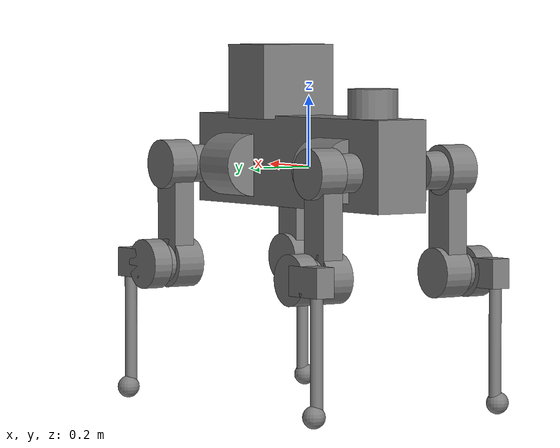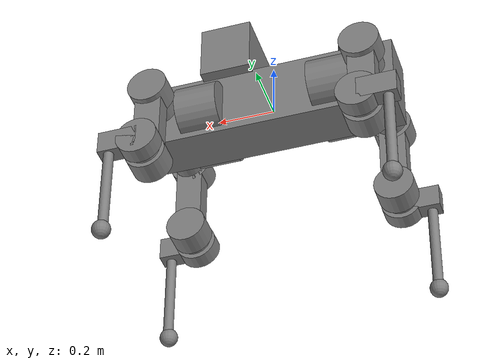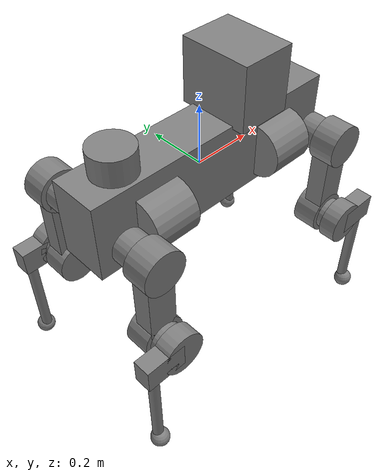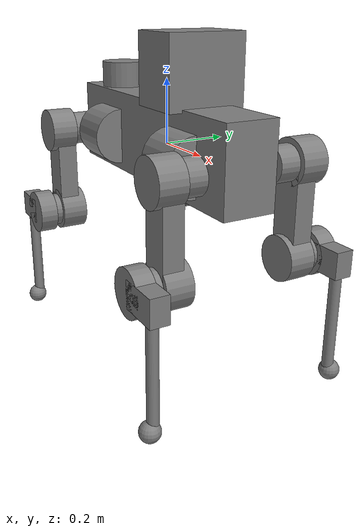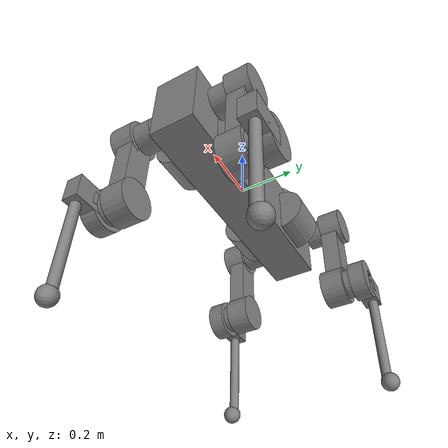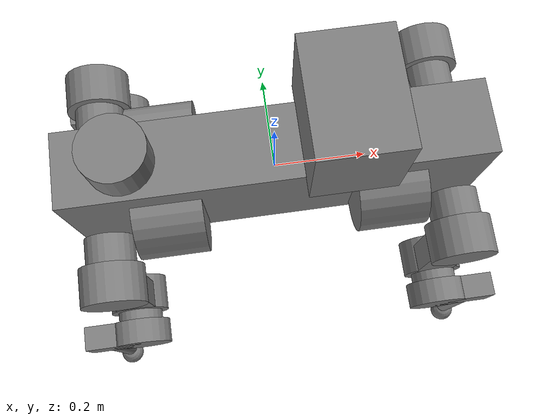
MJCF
<?xml version='1.0' encoding='utf-8'?>
<mujoco model="anymal">
  <compiler angle="radian" boundmass="1e-06" boundinertia="1e-08" meshdir=".." />
  <worldbody>
    <body name="base">
      <joint type="free" />
      <geom size="0.447 0.08075 0.128" pos="0 0 0.016" type="box" />
      <geom size="0.089 0.0741" pos="0.2353 0.08075 0" quat="0.707107 0 0.707107 0" type="cylinder" />
      <geom size="0.089 0.0741" pos="0.2353 -0.08075 0" quat="0.707107 0 0.707107 0" type="cylinder" />
      <geom size="0.089 0.0741" pos="-0.2353 0.08075 0" quat="0.707107 0 0.707107 0" type="cylinder" />
      <geom size="0.089 0.0741" pos="-0.2353 -0.08075 0" quat="0.707107 0 0.707107 0" type="cylinder" />
      <geom size="0.07 0.06775" pos="-0.31 0 0.1585" quat="0 0 0 1" type="cylinder" />
      <geom size="0.08 0.0675 0.0075" pos="0.14253 0 0.092" type="box" />
      <body name="LF_HIP" pos="0.304 0.109 0">
        <inertial pos="0.035047 -0.00122677 0" quat="0.502484 0.502593 0.497424 0.497473" mass="0.36586" diaginertia="0.000558279 0.000443321 0.00023849" />
        <joint name="LF_HAA" pos="0 0 0" axis="1 0 0" range="-0.785398 0.610865" actuatorfrcrange="-80 80" />
        <body name="LF_THIGH" pos="0.069 0.006 0" quat="0.707107 0 0 -0.707107">
          <inertial pos="-0.0669974 0.110833 -0.121809" quat="0.847424 0.355343 -0.0696405 0.388271" mass="5.1322" diaginertia="0.141486 0.135483 0.0206892" />
          <joint name="LF_HFE" pos="0 0 0" axis="-1 0 0" range="-9.42478 9.42478" actuatorfrcrange="-80 80" />
          <geom size="0.05375 0.0595" pos="-0.0595 0 0" quat="0.707107 0 0.707107 0" type="cylinder" />
          <geom size="0.07 0.041565" pos="-0.105195 0 0" quat="0.5 0.5 0.5 0.5" type="cylinder" />
          <geom size="0.0465 0.0315 0.1425" pos="-0.09513 0 -0.1425" quat="0.707107 0 0 0.707107" type="box" />
          <geom size="0.07 0.041565" pos="-0.085065 0 -0.285" quat="0.5 0.5 0.5 0.5" type="cylinder" />
          <geom size="0.05375 0.0595" pos="-0.121 0 -0.285" quat="0 -0.707107 0 0.707107" type="cylinder" />
          <body name="LF_SHANK" pos="-0.1805 0 -0.285" quat="0 0 0 1">
            <inertial pos="0.0219778 -0.032671 -0.0911529" quat="0.80705 -0.129258 0.0892927 0.569201" mass="0.79598" diaginertia="0.0192772 0.0192542 0.00249606" />
            <joint name="LF_KFE" pos="0 0 0" axis="1 0 0" range="-9.42478 9.42478" actuatorfrcrange="-80 80" />
            <geom size="0.071 0.02866" quat="0.5 0.5 -0.5 -0.5" type="cylinder" />
            <geom size="0.066415 0.04151 0.02866" pos="0 -0.066415 0" quat="0.5 0.5 -0.5 -0.5" type="box" />
            <geom size="0.0175 0.19786" pos="0.00535885 -0.1 -0.164217" quat="0.707107 0 0 -0.707107" type="cylinder" />
            <geom size="0.031455" pos="0.0141088 -0.1 -0.362077" quat="0.707107 0 0 -0.707107" />
          </body>
        </body>
      </body>
      <body name="RF_HIP" pos="0.304 -0.109 0">
        <inertial pos="0.035047 0.00122677 0" quat="0.497473 0.497424 0.502593 0.502484" mass="0.36586" diaginertia="0.000558279 0.000443321 0.00023849" />
        <joint name="RF_HAA" pos="0 0 0" axis="1 0 0" range="-0.610865 0.785398" actuatorfrcrange="-80 80" />
        <body name="RF_THIGH" pos="0.069 -0.006 0" quat="0.707107 0 0 0.707107">
          <inertial pos="-0.0669974 0.0715537 -0.121809" quat="0.877206 0.44579 0.0354025 0.17472" mass="5.1322" diaginertia="0.18131 0.150268 0.0396147" />
          <joint name="RF_HFE" pos="0 0 0" axis="1 0 0" range="-9.42478 9.42478" actuatorfrcrange="-80 80" />
          <geom size="0.05375 0.0595" pos="-0.0595 0 0" quat="0.707107 0 0.707107 0" type="cylinder" />
          <geom size="0.07 0.041565" pos="-0.105195 0 0" quat="0.5 0.5 -0.5 -0.5" type="cylinder" />
          <geom size="0.0465 0.0315 0.1425" pos="-0.09513 0 -0.1425" quat="0.707107 0 0 -0.707107" type="box" />
          <geom size="0.07 0.041565" pos="-0.085065 0 -0.285" quat="0.5 0.5 -0.5 -0.5" type="cylinder" />
          <geom size="0.05375 0.0595" pos="-0.121 0 -0.285" quat="0 0.707107 0 -0.707107" type="cylinder" />
          <body name="RF_SHANK" pos="-0.1805 0 -0.285" quat="0 0 0 -1">
            <inertial pos="0.0219778 0.032671 -0.0911529" quat="0.569201 0.0892927 -0.129258 0.80705" mass="0.79598" diaginertia="0.0192772 0.0192542 0.00249606" />
            <joint name="RF_KFE" pos="0 0 0" axis="-1 0 0" range="-9.42478 9.42478" actuatorfrcrange="-80 80" />
            <geom size="0.071 0.02866" quat="0.5 0.5 0.5 0.5" type="cylinder" />
            <geom size="0.066415 0.04151 0.02866" pos="0 0.066415 0" quat="0.5 0.5 0.5 0.5" type="box" />
            <geom size="0.0175 0.19786" pos="0.00535885 0.1 -0.164217" quat="0.707107 0 0 0.707107" type="cylinder" />
            <geom size="0.031455" pos="0.0141088 0.1 -0.362077" quat="0.707107 0 0 0.707107" />
          </body>
        </body>
      </body>
      <body name="LH_HIP" pos="-0.304 0.109 0" quat="0 0 0 -1">
        <inertial pos="-0.0346698 -0.00125957 0" quat="0.497686 0.497737 0.502224 0.502332" mass="0.36586" diaginertia="0.000567894 0.000452912 0.000238466" />
        <joint name="LH_HAA" pos="0 0 0" axis="-1 0 0" range="-0.785398 0.610865" actuatorfrcrange="-80 80" />
        <body name="LH_THIGH" pos="0.069 -0.006 0" quat="-0.707107 0 0 -0.707107">
          <inertial pos="-0.0668215 0.110833 -0.121809" quat="0.848941 0.356939 -0.0647204 0.384323" mass="5.1322" diaginertia="0.141716 0.135634 0.0205503" />
          <joint name="LH_HFE" pos="0 0 0" axis="-1 0 0" range="-9.42478 9.42478" actuatorfrcrange="-80 80" />
          <geom size="0.05375 0.0595" pos="-0.0595 0 0" quat="0.707107 0 0.707107 0" type="cylinder" />
          <geom size="0.07 0.041565" pos="-0.105195 0 0" quat="0.5 0.5 0.5 0.5" type="cylinder" />
          <geom size="0.0465 0.0315 0.1425" pos="-0.09513 0 -0.1425" quat="0.707107 0 0 0.707107" type="box" />
          <geom size="0.07 0.041565" pos="-0.085065 0 -0.285" quat="0.5 0.5 0.5 0.5" type="cylinder" />
          <geom size="0.05375 0.0595" pos="-0.121 0 -0.285" quat="0 -0.707107 0 0.707107" type="cylinder" />
          <body name="LH_SHANK" pos="-0.1805 0 -0.285" quat="0 0 0 1">
            <inertial pos="-0.00540503 0.0417739 -0.0887313" quat="0.576666 0.0236612 -0.146695 0.803354" mass="0.79598" diaginertia="0.0186219 0.0179968 0.00220746" />
            <joint name="LH_KFE" pos="0 0 0" axis="1 0 0" range="-9.42478 9.42478" actuatorfrcrange="-80 80" />
            <geom size="0.071 0.02866" quat="0.5 0.5 -0.5 -0.5" type="cylinder" />
            <geom size="0.066415 0.04151 0.02866" pos="0 0.066415 0" quat="0.5 0.5 -0.5 -0.5" type="box" />
            <geom size="0.0175 0.19786" pos="0.00535885 0.1 -0.164217" quat="0.707107 0 0 -0.707107" type="cylinder" />
            <geom size="0.031455" pos="0.0141088 0.1 -0.362077" quat="0.707107 0 0 -0.707107" />
          </body>
        </body>
      </body>
      <body name="RH_HIP" pos="-0.304 -0.109 0" quat="0 0 0 -1">
        <inertial pos="-0.0346698 0.00125957 0" quat="0.502332 0.502224 0.497737 0.497686" mass="0.36586" diaginertia="0.000567894 0.000452912 0.000238466" />
        <joint name="RH_HAA" pos="0 0 0" axis="-1 0 0" range="-0.610865 0.785398" actuatorfrcrange="-80 80" />
        <body name="RH_THIGH" pos="0.069 0.006 0" quat="0.707107 0 0 -0.707107">
          <inertial pos="-0.0668215 0.0715537 -0.121809" quat="0.879005 0.444872 0.0396475 0.166936" mass="5.1322" diaginertia="0.180979 0.150741 0.0397139" />
          <joint name="RH_HFE" pos="0 0 0" axis="1 0 0" range="-9.42478 9.42478" actuatorfrcrange="-80 80" />
          <geom size="0.05375 0.0595" pos="-0.0595 0 0" quat="0.707107 0 0.707107 0" type="cylinder" />
          <geom size="0.07 0.041565" pos="-0.105195 0 0" quat="0.5 0.5 -0.5 -0.5" type="cylinder" />
          <geom size="0.0465 0.0315 0.1425" pos="-0.09513 0 -0.1425" quat="0.707107 0 0 -0.707107" type="box" />
          <geom size="0.07 0.041565" pos="-0.085065 0 -0.285" quat="0.5 0.5 -0.5 -0.5" type="cylinder" />
          <geom size="0.05375 0.0595" pos="-0.121 0 -0.285" quat="0 0.707107 0 -0.707107" type="cylinder" />
          <body name="RH_SHANK" pos="-0.1805 0 -0.285" quat="0 0 0 -1">
            <inertial pos="-0.00540503 -0.0417739 -0.0887313" quat="0.803354 -0.146695 0.0236612 0.576666" mass="0.79598" diaginertia="0.0186219 0.0179968 0.00220746" />
            <joint name="RH_KFE" pos="0 0 0" axis="-1 0 0" range="-9.42478 9.42478" actuatorfrcrange="-80 80" />
            <geom size="0.071 0.02866" quat="0.5 0.5 0.5 0.5" type="cylinder" />
            <geom size="0.066415 0.04151 0.02866" pos="0 -0.066415 0" quat="0.5 0.5 0.5 0.5" type="box" />
            <geom size="0.0175 0.19786" pos="0.00535885 -0.1 -0.164217" quat="0.707107 0 0 0.707107" type="cylinder" />
            <geom size="0.031455" pos="0.0141088 -0.1 -0.362077" quat="0.707107 0 0 0.707107" />
          </body>
        </body>
      </body>
      <body name="inspection_payload_pan" pos="0.14253 0 0.115">
        <inertial pos="0.00068 -0.00349 0.07578" quat="0.730414 0.6591 -0.113342 0.138691" mass="3.18886" diaginertia="0.0273657 0.0213468 0.0150652" />
        <joint name="inspection_payload_mount_to_pan" pos="0 0 0" axis="0 0 1" range="-2.6 2.6" actuatorfrcrange="-20 20" damping="0.05" frictionloss="0.01" />
        <geom size="0.09 0.12 0.105" pos="0 0 0.125" type="box" />
        <body name="inspection_payload_tilt" pos="0.03 0 0.152">
          <inertial pos="0.00534011 -0.00379011 -0.00091" quat="0.998391 0.0478847 -0.00991053 0.0287165" mass="2.08401" diaginertia="0.00744055 0.00619115 0.00592991" />
          <joint name="inspection_payload_pan_to_tilt" pos="0 0 0" axis="0 1 0" range="-1.5708 1.5708" actuatorfrcrange="-20 20" damping="0.1" frictionloss="0.5" />
        </body>
      </body>
    </body>
  </worldbody>
</mujoco>
